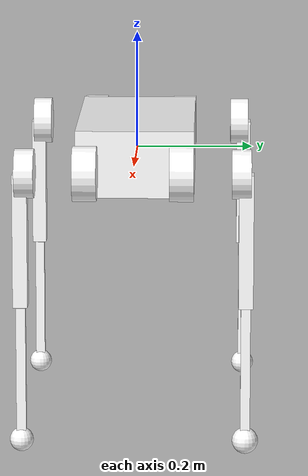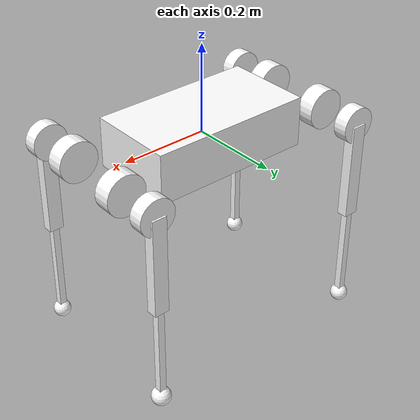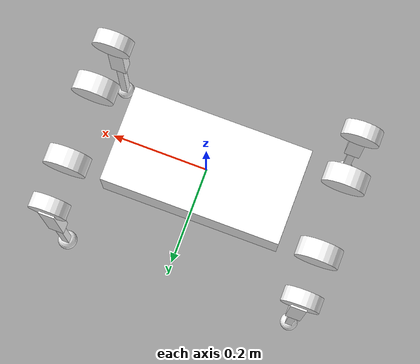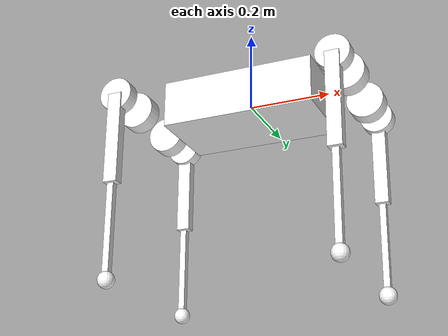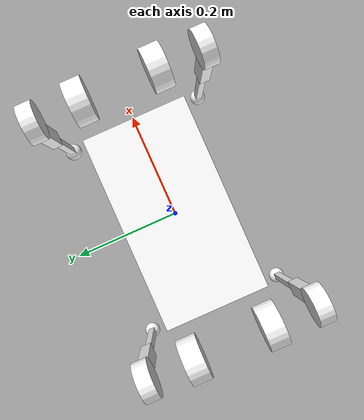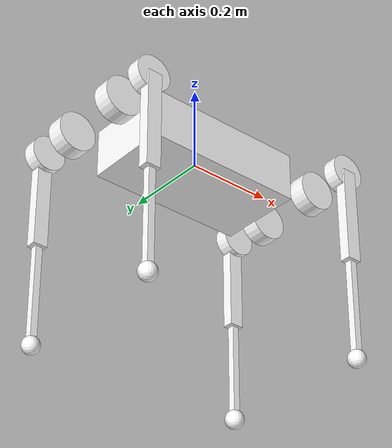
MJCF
<mujoco model="jamal_description">
  <compiler angle="radian"/>

  <worldbody>
    <geom size="0.1881 0.1 0.057" type="box" rgba="1 1 1 1"/>
    <body name="FR_hip" pos="0.2699 -0.08028 0">
      <inertial pos="0 0 0" quat="0.70383 0.0163448 0.00756745 0.71014" mass="0.933763" diaginertia="0.00106518 0.000832289 0.000803606"/>
      <joint name="FR_hip_joint" pos="0 0 0" axis="1 0 0" range="-0.802851 0.802851" actuatorfrcrange="-33.5 33.5"/>
      <geom size="0.046 0.02" quat="0.707107 0.707107 0 0" type="cylinder" rgba="1 1 1 1"/>
      <body name="FR_thigh" pos="0 -0.10755 0">
        <inertial pos="0 0 0" quat="0.707752 0.00920427 0.0238351 0.705998" mass="1.32134" diaginertia="0.00316175 0.0026319 0.0012157"/>
        <joint name="FR_thigh_joint" pos="0 0 0" axis="0 1 0" range="-1.0472 4.18879" actuatorfrcrange="-33.5 33.5"/>
        <geom size="0.1125 0.01225 0.017" pos="0 0 -0.1125" quat="0.707107 0 0.707107 0" type="box" rgba="1 1 1 1"/>
        <geom size="0.041 0.016" pos="0 0.008 0" quat="0.707107 0.707107 0 0" type="cylinder" rgba="1 1 1 1"/>
        <body name="FR_calf" pos="0 0 -0.225">
          <inertial pos="0 0 -0.0730961" quat="0.706884 -0.0103183 -0.0103154 0.707179" mass="0.188793" diaginertia="0.0026379 0.00261976 2.81576e-05"/>
          <joint name="FR_calf_joint" pos="0 0 0" axis="0 1 0" range="-2.69653 -0.916298" actuatorfrcrange="-33.5 33.5"/>
          <geom size="0.115 0.008 0.008" pos="0 0 -0.1175" quat="0.707107 0 0.707107 0" type="box" rgba="1 1 1 1"/>
          <geom size="0.02" pos="0 0 -0.23" rgba="1 1 1 1"/>
        </body>
      </body>
    </body>
    <body name="FL_hip" pos="0.2699 0.08028 0">
      <inertial pos="0 0 0" quat="0.71014 0.00756745 0.0163448 0.70383" mass="0.933763" diaginertia="0.00106518 0.000832289 0.000803606"/>
      <joint name="FL_hip_joint" pos="0 0 0" axis="1 0 0" range="-0.802851 0.802851" actuatorfrcrange="-33.5 33.5"/>
      <geom size="0.046 0.02" quat="0.707107 0.707107 0 0" type="cylinder" rgba="1 1 1 1"/>
      <body name="FL_thigh" pos="0 0.10755 0">
        <inertial pos="0 0 0" quat="0.705998 0.0238351 0.00920427 0.707752" mass="1.32134" diaginertia="0.00316175 0.0026319 0.0012157"/>
        <joint name="FL_thigh_joint" pos="0 0 0" axis="0 1 0" range="-1.0472 4.18879" actuatorfrcrange="-33.5 33.5"/>
        <geom size="0.1125 0.01225 0.017" pos="0 0 -0.1125" quat="0.707107 0 0.707107 0" type="box" rgba="1 1 1 1"/>
        <geom size="0.041 0.016" pos="0 -0.008 0" quat="0.707107 0.707107 0 0" type="cylinder" rgba="1 1 1 1"/>
        <body name="FL_calf" pos="0 0 -0.225">
          <inertial pos="0 0 -0.0730961" quat="0.706884 -0.0103183 -0.0103154 0.707179" mass="0.188793" diaginertia="0.0026379 0.00261976 2.81576e-05"/>
          <joint name="FL_calf_joint" pos="0 0 0" axis="0 1 0" range="-2.69653 -0.916298" actuatorfrcrange="-33.5 33.5"/>
          <geom size="0.115 0.008 0.008" pos="0 0 -0.1175" quat="0.707107 0 0.707107 0" type="box" rgba="1 1 1 1"/>
          <geom size="0.022" pos="0 0 -0.23" rgba="1 1 1 1"/>
        </body>
      </body>
    </body>
    <body name="RR_hip" pos="-0.2699 -0.08028 0">
      <inertial pos="0 0 0" quat="0.71014 -0.00756745 -0.0163448 0.70383" mass="0.933763" diaginertia="0.00106518 0.000832289 0.000803606"/>
      <joint name="RR_hip_joint" pos="0 0 0" axis="1 0 0" range="-0.802851 0.802851" actuatorfrcrange="-33.5 33.5"/>
      <geom size="0.046 0.02" quat="0.707107 0.707107 0 0" type="cylinder" rgba="1 1 1 1"/>
      <body name="RR_thigh" pos="0 -0.10755 0">
        <inertial pos="0 0 0" quat="0.707752 0.00920427 0.0238351 0.705998" mass="1.32134" diaginertia="0.00316175 0.0026319 0.0012157"/>
        <joint name="RR_thigh_joint" pos="0 0 0" axis="0 1 0" range="-1.0472 4.18879" actuatorfrcrange="-33.5 33.5"/>
        <geom size="0.1125 0.01225 0.017" pos="0 0 -0.1125" quat="0.707107 0 0.707107 0" type="box" rgba="1 1 1 1"/>
        <geom size="0.041 0.016" pos="0 0.008 0" quat="0.707107 0.707107 0 0" type="cylinder" rgba="1 1 1 1"/>
        <body name="RR_calf" pos="0 0 -0.225">
          <inertial pos="0 0 -0.0730961" quat="0.706884 -0.0103183 -0.0103154 0.707179" mass="0.188793" diaginertia="0.0026379 0.00261976 2.81576e-05"/>
          <joint name="RR_calf_joint" pos="0 0 0" axis="0 1 0" range="-2.69653 -0.916298" actuatorfrcrange="-33.5 33.5"/>
          <geom size="0.115 0.008 0.008" pos="0 0 -0.1175" quat="0.707107 0 0.707107 0" type="box" rgba="1 1 1 1"/>
          <geom size="0.02" pos="0 0 -0.23" rgba="1 1 1 1"/>
        </body>
      </body>
    </body>
    <body name="RL_hip" pos="-0.2699 0.08028 0">
      <inertial pos="0 0 0" quat="0.70383 -0.0163448 -0.00756745 0.71014" mass="0.933763" diaginertia="0.00106518 0.000832289 0.000803606"/>
      <joint name="RL_hip_joint" pos="0 0 0" axis="1 0 0" range="-0.802851 0.802851" actuatorfrcrange="-33.5 33.5"/>
      <geom size="0.046 0.02" quat="0.707107 0.707107 0 0" type="cylinder" rgba="1 1 1 1"/>
      <body name="RL_thigh" pos="0 0.10755 0">
        <inertial pos="0 0 0" quat="0.705998 0.0238351 0.00920427 0.707752" mass="1.32134" diaginertia="0.00316175 0.0026319 0.0012157"/>
        <joint name="RL_thigh_joint" pos="0 0 0" axis="0 1 0" range="-1.0472 4.18879" actuatorfrcrange="-33.5 33.5"/>
        <geom size="0.1125 0.01225 0.017" pos="0 0 -0.1125" quat="0.707107 0 0.707107 0" type="box" rgba="1 1 1 1"/>
        <geom size="0.041 0.016" pos="0 -0.008 0" quat="0.707107 0.707107 0 0" type="cylinder" rgba="1 1 1 1"/>
        <body name="RL_calf" pos="0 0 -0.225">
          <inertial pos="0 0 -0.0730961" quat="0.706884 -0.0103183 -0.0103154 0.707179" mass="0.188793" diaginertia="0.0026379 0.00261976 2.81576e-05"/>
          <joint name="RL_calf_joint" pos="0 0 0" axis="0 1 0" range="-2.69653 -0.916298" actuatorfrcrange="-33.5 33.5"/>
          <geom size="0.115 0.008 0.008" pos="0 0 -0.1175" quat="0.707107 0 0.707107 0" type="box" rgba="1 1 1 1"/>
          <geom size="0.02" pos="0 0 -0.23" rgba="1 1 1 1"/>
        </body>
      </body>
    </body>
  </worldbody>
</mujoco>
